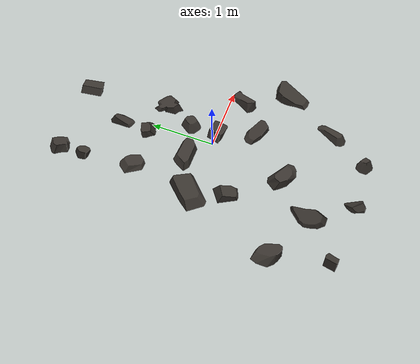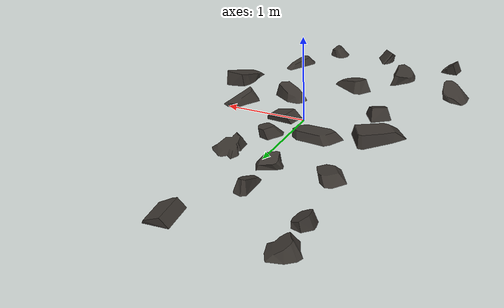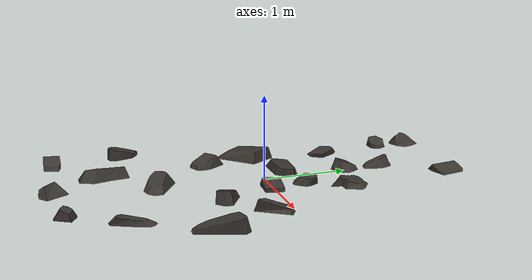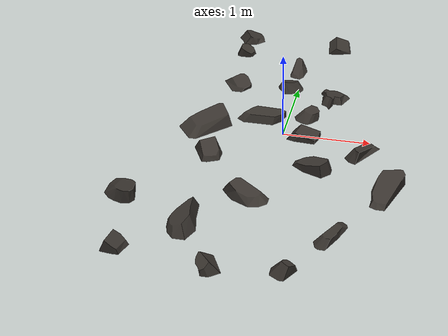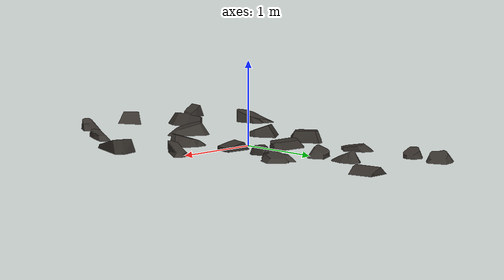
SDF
<?xml version="1.0"?>
<sdf version="1.9">
  <model name="aero_sense_rubble_b">
    <static>true</static>
    <link name="link">
      <visual name="visual">
        <geometry><mesh><uri>model://debris_3_1/meshes/debris_3_1.dae</uri><scale>4 4 4</scale></mesh></geometry>
        <material><ambient>0.22 0.20 0.18 1</ambient><diffuse>0.22 0.20 0.18 1</diffuse></material>
      </visual>
    </link>
  </model>
</sdf>
